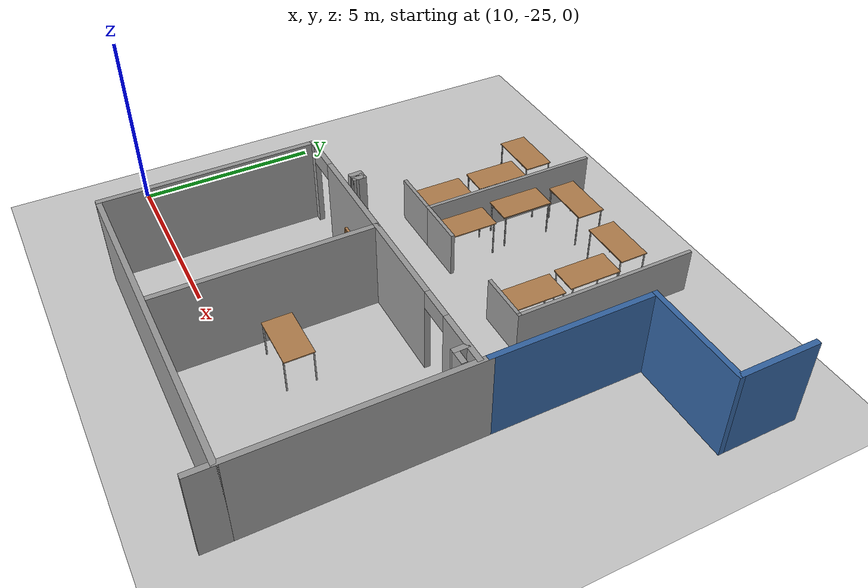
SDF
<sdf version="1.7">
 <world name="default">
  <model name="ground_plane">
   <static>1</static>
   <link name="link">
    <collision name="collision">
     <geometry><plane><normal>0 0 1</normal><size>100 100</size></plane></geometry>
     <surface>
      <contact><collide_bitmask>65535</collide_bitmask></contact>
      <friction><ode><mu>100</mu><mu2>50</mu2></ode></friction>
     </surface>
    </collision>
    <visual name="visual">
     <cast_shadows>0</cast_shadows>
     <geometry><plane><normal>0 0 1</normal><size>100 100</size></plane></geometry>
     <material>
      <script><uri>file://media/materials/scripts/gazebo.material</uri><name>Gazebo/Grey</name></script>
     </material>
    </visual>
   </link>
  </model>
  <model name="XXXXX_office_centered">
   <pose>8.46852 -9.33941 0 0 -0 0</pose>
   <link name="Wall_10">
    <collision name="Wall_10_Collision">
     <geometry><box><size>2.25 0.15 2.5</size></box></geometry>
     <pose>0 0 1.25 0 -0 0</pose>
    </collision>
    <visual name="Wall_10_Visual">
     <pose>0 0 1.25 0 -0 0</pose>
     <geometry><box><size>2.25 0.15 2.5</size></box></geometry>
     <material>
      <script><uri>file://media/materials/scripts/gazebo.material</uri><name>Gazebo/Grey</name></script>
      <ambient>0.203922 0.396078 0.643137 1</ambient>
     </material>
     <meta><layer>0</layer></meta>
    </visual>
    <pose>16.775 -5.85015 0 0 -0 -1.5708</pose>
   </link>
   <link name="Wall_11">
    <collision name="Wall_11_Collision">
     <geometry><box><size>3 0.15 2.5</size></box></geometry>
     <pose>0 0 1.25 0 -0 0</pose>
    </collision>
    <visual name="Wall_11_Visual">
     <pose>0 0 1.25 0 -0 0</pose>
     <geometry><box><size>3 0.15 2.5</size></box></geometry>
     <material>
      <script><uri>file://media/materials/scripts/gazebo.material</uri><name>Gazebo/Grey</name></script>
      <ambient>0.203922 0.396078 0.643137 1</ambient>
     </material>
     <meta><layer>0</layer></meta>
    </visual>
    <pose>15.35 -6.90015 0 0 -0 3.14159</pose>
   </link>
   <link name="Wall_12">
    <collision name="Wall_12_Collision">
     <geometry><box><size>4.5 0.15 2.5</size></box></geometry>
     <pose>0 0 1.25 0 -0 0</pose>
    </collision>
    <visual name="Wall_12_Visual">
     <pose>0 0 1.25 0 -0 0</pose>
     <geometry><box><size>4.5 0.15 2.5</size></box></geometry>
     <material>
      <script><uri>file://media/materials/scripts/gazebo.material</uri><name>Gazebo/Grey</name></script>
      <ambient>0.203922 0.396078 0.643137 1</ambient>
     </material>
     <meta><layer>0</layer></meta>
    </visual>
    <pose>13.925 -9.07515 0 0 -0 -1.5708</pose>
   </link>
   <link name="Wall_13">
    <collision name="Wall_13_Collision">
     <geometry><box><size>6.25 0.15 2.5</size></box></geometry>
     <pose>0 0 1.25 0 -0 0</pose>
    </collision>
    <visual name="Wall_13_Visual">
     <pose>0 0 1.25 0 -0 0</pose>
     <geometry><box><size>6.25 0.15 2.5</size></box></geometry>
     <material>
      <script><uri>file://media/materials/scripts/gazebo.material</uri><name>Gazebo/Grey</name></script>
      <ambient>1 1 1 1</ambient>
     </material>
     <meta><layer>0</layer></meta>
    </visual>
    <pose>13.925 -14.3001 0 0 -0 -1.5708</pose>
   </link>
   <link name="Wall_14">
    <collision name="Wall_14_Collision">
     <geometry><box><size>9.25 0.15 2.5</size></box></geometry>
     <pose>0 0 1.25 0 -0 0</pose>
    </collision>
    <visual name="Wall_14_Visual">
     <pose>0 0 1.25 0 -0 0</pose>
     <geometry><box><size>9.25 0.15 2.5</size></box></geometry>
     <material>
      <script><uri>file://media/materials/scripts/gazebo.material</uri><name>Gazebo/Grey</name></script>
      <ambient>1 1 1 1</ambient>
     </material>
     <meta><layer>0</layer></meta>
    </visual>
    <pose>9.375 -17.3501 0 0 -0 3.14159</pose>
   </link>
   <link name="Wall_147">
    <collision name="Wall_147_Collision">
     <geometry><box><size>5.2 0.1 1.3</size></box></geometry>
     <pose>0 0 0.65 0 -0 0</pose>
    </collision>
    <visual name="Wall_147_Visual">
     <pose>0 0 0.65 0 -0 0</pose>
     <geometry><box><size>5.2 0.1 1.3</size></box></geometry>
     <material>
      <script><uri>file://media/materials/scripts/gazebo.material</uri><name>Gazebo/Grey</name></script>
      <ambient>1 1 1 1</ambient>
     </material>
     <meta><layer>0</layer></meta>
    </visual>
    <pose>12.0503 -6.76685 0 0 -0 -1.5708</pose>
   </link>
   <link name="Wall_148">
    <collision name="Wall_148_Collision">
     <geometry><box><size>1.4498 0.1 1.3</size></box></geometry>
     <pose>0 0 0.65 0 -0 0</pose>
    </collision>
    <visual name="Wall_148_Visual">
     <pose>0 0 0.65 0 -0 0</pose>
     <geometry><box><size>1.4498 0.1 1.3</size></box></geometry>
     <material>
      <script><uri>file://media/materials/scripts/gazebo.material</uri><name>Gazebo/Grey</name></script>
      <ambient>1 1 1 1</ambient>
     </material>
     <meta><layer>0</layer></meta>
    </visual>
    <pose>11.3753 -9.31685 0 0 -0 3.14159</pose>
   </link>
   <link name="Wall_157">
    <collision name="Wall_157_Collision">
     <geometry><box><size>5.2 0.1 1.3</size></box></geometry>
     <pose>0 0 0.65 0 -0 0</pose>
    </collision>
    <visual name="Wall_157_Visual">
     <pose>0 0 0.65 0 -0 0</pose>
     <geometry><box><size>5.2 0.1 1.3</size></box></geometry>
     <material>
      <script><uri>file://media/materials/scripts/gazebo.material</uri><name>Gazebo/Grey</name></script>
      <ambient>1 1 1 1</ambient>
     </material>
     <meta><layer>0</layer></meta>
    </visual>
    <pose>7.31527 -6.75985 0 0 -0 -1.5708</pose>
   </link>
   <link name="Wall_158">
    <collision name="Wall_158_Collision">
     <geometry><box><size>1.44989 0.1 1.3</size></box></geometry>
     <pose>0 0 0.65 0 -0 0</pose>
    </collision>
    <visual name="Wall_158_Visual">
     <pose>0 0 0.65 0 -0 0</pose>
     <geometry><box><size>1.44989 0.1 1.3</size></box></geometry>
     <material>
      <script><uri>file://media/materials/scripts/gazebo.material</uri><name>Gazebo/Grey</name></script>
      <ambient>1 1 1 1</ambient>
     </material>
     <meta><layer>0</layer></meta>
    </visual>
    <pose>7.99027 -9.30985 0 0 -0 0</pose>
   </link>
   <link name="Wall_160">
    <collision name="Wall_160_Collision">
     <geometry><box><size>1.45011 0.1 1.3</size></box></geometry>
     <pose>0 0 0.65 0 -0 0</pose>
    </collision>
    <visual name="Wall_160_Visual">
     <pose>0 0 0.65 0 -0 0</pose>
     <geometry><box><size>1.45011 0.1 1.3</size></box></geometry>
     <material>
      <script><uri>file://media/materials/scripts/gazebo.material</uri><name>Gazebo/Grey</name></script>
      <ambient>1 1 1 1</ambient>
     </material>
     <meta><layer>0</layer></meta>
    </visual>
    <pose>6.64027 -9.30985 0 0 -0 3.14159</pose>
   </link>
   <link name="Wall_185">
    <collision name="Wall_185_Collision">
     <geometry><box><size>1.44981 0.1 1.3</size></box></geometry>
     <pose>0 0 0.65 0 -0 0</pose>
    </collision>
    <visual name="Wall_185_Visual">
     <pose>0 0 0.65 0 -0 0</pose>
     <geometry><box><size>1.44981 0.1 1.3</size></box></geometry>
     <material>
      <script><uri>file://media/materials/scripts/gazebo.material</uri><name>Gazebo/Grey</name></script>
      <ambient>1 1 1 1</ambient>
     </material>
     <meta><layer>0</layer></meta>
    </visual>
    <pose>3.99027 -11.4899 0 0 -0 3.14159</pose>
   </link>
   <link name="Wall_21">
    <collision name="Wall_21_Collision">
     <geometry><box><size>0.75 0.15 2.5</size></box></geometry>
     <pose>0 0 1.25 0 -0 0</pose>
    </collision>
    <visual name="Wall_21_Visual">
     <pose>0 0 1.25 0 -0 0</pose>
     <geometry><box><size>0.75 0.15 2.5</size></box></geometry>
     <material>
      <script><uri>file://media/materials/scripts/gazebo.material</uri><name>Gazebo/Grey</name></script>
      <ambient>1 1 1 1</ambient>
     </material>
     <meta><layer>0</layer></meta>
    </visual>
    <pose>13.925 -17.6501 0 0 -0 -1.5708</pose>
   </link>
   <link name="Wall_59">
    <collision name="Wall_59_Collision">
     <geometry><box><size>6 0.15 2.5</size></box></geometry>
     <pose>0 0 1.25 0 -0 0</pose>
    </collision>
    <visual name="Wall_59_Visual">
     <pose>0 0 1.25 0 -0 0</pose>
     <geometry><box><size>6 0.15 2.5</size></box></geometry>
     <material>
      <script><uri>file://media/materials/scripts/gazebo.material</uri><name>Gazebo/Grey</name></script>
      <ambient>1 1 1 1</ambient>
     </material>
     <meta><layer>0</layer></meta>
    </visual>
    <pose>4.66537 -14.4148 0 0 -0 1.57083</pose>
   </link>
   <link name="Wall_60">
    <pose>6.71537 -11.4898 0 0 -0 3.5e-05</pose>
    <visual name="Wall_60_Visual_0">
     <pose>-1.95788 0 1.25 0 -0 0</pose>
     <geometry><box><size>0.33424 0.15 2.5</size></box></geometry>
     <material>
      <script><uri>file://media/materials/scripts/gazebo.material</uri><name>Gazebo/Grey</name></script>
      <ambient>1 1 1 1</ambient>
     </material>
     <meta><layer>0</layer></meta>
    </visual>
    <collision name="Wall_60_Collision_0">
     <geometry><box><size>0.33424 0.15 2.5</size></box></geometry>
     <pose>-1.95788 0 1.25 0 -0 0</pose>
    </collision>
    <visual name="Wall_60_Visual_1">
     <pose>0.61712 0 1.25 0 -0 0</pose>
     <geometry><box><size>3.01576 0.15 2.5</size></box></geometry>
     <material>
      <script><uri>file://media/materials/scripts/gazebo.material</uri><name>Gazebo/Grey</name></script>
      <ambient>1 1 1 1</ambient>
     </material>
     <meta><layer>0</layer></meta>
    </visual>
    <collision name="Wall_60_Collision_1">
     <geometry><box><size>3.01576 0.15 2.5</size></box></geometry>
     <pose>0.61712 0 1.25 0 -0 0</pose>
    </collision>
    <visual name="Wall_60_Visual_2">
     <pose>-1.34076 0 2.25 0 -0 0</pose>
     <geometry><box><size>0.9 0.15 0.5</size></box></geometry>
     <material>
      <script><uri>file://media/materials/scripts/gazebo.material</uri><name>Gazebo/Grey</name></script>
      <ambient>1 1 1 1</ambient>
     </material>
     <meta><layer>0</layer></meta>
    </visual>
    <collision name="Wall_60_Collision_2">
     <geometry><box><size>0.9 0.15 0.5</size></box></geometry>
     <pose>-1.34076 0 2.25 0 -0 0</pose>
    </collision>
   </link>
   <link name="Wall_61">
    <pose>11.3155 -11.4897 0 0 -0 0</pose>
    <visual name="Wall_61_Visual_0">
     <pose>-1.2353 0 1.25 0 -0 0</pose>
     <geometry><box><size>2.77939 0.15 2.5</size></box></geometry>
     <material>
      <script><uri>file://media/materials/scripts/gazebo.material</uri><name>Gazebo/Grey</name></script>
      <ambient>1 1 1 1</ambient>
     </material>
     <meta><layer>0</layer></meta>
    </visual>
    <collision name="Wall_61_Collision_0">
     <geometry><box><size>2.77939 0.15 2.5</size></box></geometry>
     <pose>-1.2353 0 1.25 0 -0 0</pose>
    </collision>
    <visual name="Wall_61_Visual_1">
     <pose>1.8397 0 1.25 0 -0 0</pose>
     <geometry><box><size>1.57061 0.15 2.5</size></box></geometry>
     <material>
      <script><uri>file://media/materials/scripts/gazebo.material</uri><name>Gazebo/Grey</name></script>
      <ambient>1 1 1 1</ambient>
     </material>
     <meta><layer>0</layer></meta>
    </visual>
    <collision name="Wall_61_Collision_1">
     <geometry><box><size>1.57061 0.15 2.5</size></box></geometry>
     <pose>1.8397 0 1.25 0 -0 0</pose>
    </collision>
    <visual name="Wall_61_Visual_2">
     <pose>0.604391 0 2.25 0 -0 0</pose>
     <geometry><box><size>0.9 0.15 0.5</size></box></geometry>
     <material>
      <script><uri>file://media/materials/scripts/gazebo.material</uri><name>Gazebo/Grey</name></script>
      <ambient>1 1 1 1</ambient>
     </material>
     <meta><layer>0</layer></meta>
    </visual>
    <collision name="Wall_61_Collision_2">
     <geometry><box><size>0.9 0.15 0.5</size></box></geometry>
     <pose>0.604391 0 2.25 0 -0 0</pose>
    </collision>
   </link>
   <link name="Wall_63">
    <collision name="Wall_63_Collision">
     <geometry><box><size>6 0.15 2.5</size></box></geometry>
     <pose>0 0 1.25 0 -0 0</pose>
    </collision>
    <visual name="Wall_63_Visual">
     <pose>0 0 1.25 0 -0 0</pose>
     <geometry><box><size>6 0.15 2.5</size></box></geometry>
     <material>
      <script><uri>file://media/materials/scripts/gazebo.material</uri><name>Gazebo/Grey</name></script>
      <ambient>1 1 1 1</ambient>
     </material>
     <meta><layer>0</layer></meta>
    </visual>
    <pose>8.76546 -14.4147 0 0 -0 -1.5708</pose>
   </link>
   <link name="Wall_69">
    <collision name="Wall_69_Collision">
     <geometry><box><size>0.5 0.15 2.5</size></box></geometry>
     <pose>0 0 1.25 0 -0 0</pose>
    </collision>
    <visual name="Wall_69_Visual">
     <pose>0 0 1.25 0 -0 0</pose>
     <geometry><box><size>0.5 0.15 2.5</size></box></geometry>
     <material>
      <script><uri>file://media/materials/scripts/gazebo.material</uri><name>Gazebo/Grey</name></script>
      <ambient>1 1 1 1</ambient>
     </material>
     <meta><layer>0</layer></meta>
    </visual>
    <pose>13.5793 -11.8238 0 0 -0 0</pose>
   </link>
   <link name="Wall_71">
    <collision name="Wall_71_Collision">
     <geometry><box><size>0.420382 0.15 2.5</size></box></geometry>
     <pose>0 0 1.25 0 -0 0</pose>
    </collision>
    <visual name="Wall_71_Visual">
     <pose>0 0 1.25 0 -0 0</pose>
     <geometry><box><size>0.420382 0.15 2.5</size></box></geometry>
     <material>
      <script><uri>file://media/materials/scripts/gazebo.material</uri><name>Gazebo/Grey</name></script>
      <ambient>1 1 1 1</ambient>
     </material>
     <meta><layer>0</layer></meta>
    </visual>
    <pose>13.4012 -11.6886 0 0 -0 1.5939</pose>
   </link>
   <link name="Wall_87">
    <collision name="Wall_87_Collision">
     <geometry><box><size>0.381532 0.15 2.5</size></box></geometry>
     <pose>0 0 1.25 0 -0 0</pose>
    </collision>
    <visual name="Wall_87_Visual">
     <pose>0 0 1.25 0 -0 0</pose>
     <geometry><box><size>0.381532 0.15 2.5</size></box></geometry>
     <material>
      <script><uri>file://media/materials/scripts/gazebo.material</uri><name>Gazebo/Grey</name></script>
      <ambient>1 1 1 1</ambient>
     </material>
     <meta><layer>0</layer></meta>
    </visual>
    <pose>6.55525 -11.0619 0 0 -0 1.59936</pose>
   </link>
   <link name="Wall_88">
    <collision name="Wall_88_Collision">
     <geometry><box><size>0.348375 0.15 2.5</size></box></geometry>
     <pose>0 0 1.25 0 -0 0</pose>
    </collision>
    <visual name="Wall_88_Visual">
     <pose>0 0 1.25 0 -0 0</pose>
     <geometry><box><size>0.348375 0.15 2.5</size></box></geometry>
     <material>
      <script><uri>file://media/materials/scripts/gazebo.material</uri><name>Gazebo/Grey</name></script>
      <ambient>1 1 1 1</ambient>
     </material>
     <meta><layer>0</layer></meta>
    </visual>
    <pose>6.65113 -10.9462 0 0 -0 0</pose>
   </link>
   <link name="Wall_89">
    <collision name="Wall_89_Collision">
     <geometry><box><size>0.368613 0.15 2.5</size></box></geometry>
     <pose>0 0 1.25 0 -0 0</pose>
    </collision>
    <visual name="Wall_89_Visual">
     <pose>0 0 1.25 0 -0 0</pose>
     <geometry><box><size>0.368613 0.15 2.5</size></box></geometry>
     <material>
      <script><uri>file://media/materials/scripts/gazebo.material</uri><name>Gazebo/Grey</name></script>
      <ambient>1 1 1 1</ambient>
     </material>
     <meta><layer>0</layer></meta>
    </visual>
    <pose>6.75032 -11.0553 0 0 -0 -1.5708</pose>
   </link>
   <link name="Wall_90">
    <collision name="Wall_90_Collision">
     <geometry><box><size>0.331874 0.15 2.5</size></box></geometry>
     <pose>0 0 1.25 0 -0 0</pose>
    </collision>
    <visual name="Wall_90_Visual">
     <pose>0 0 1.25 0 -0 0</pose>
     <geometry><box><size>0.331874 0.15 2.5</size></box></geometry>
     <material>
      <script><uri>file://media/materials/scripts/gazebo.material</uri><name>Gazebo/Grey</name></script>
      <ambient>1 1 1 1</ambient>
     </material>
     <meta><layer>0</layer></meta>
    </visual>
    <pose>6.6594 -11.1611 0 0 -0 3.10525</pose>
   </link>
   <static>1</static>
  </model>
  <model name="table_0">
   <static>1</static>
   <link name="link">
    <collision name="surface">
     <pose>0 0 1 0 -0 0</pose>
     <geometry><box><size>1.5 0.8 0.03</size></box></geometry>
     <surface><friction><ode><mu>0.6</mu><mu2>0.6</mu2></ode></friction></surface>
    </collision>
    <visual name="visual1">
     <pose>0 0 1 0 -0 0</pose>
     <geometry><box><size>1.5 0.8 0.03</size></box></geometry>
     <material>
      <script><uri>file://media/materials/scripts/gazebo.material</uri><name>Gazebo/Wood</name></script>
     </material>
    </visual>
    <collision name="collision_front_left_leg">
     <pose>0.68 0.38 0.5 0 -0 0</pose>
     <geometry><cylinder><radius>0.02</radius><length>1</length></cylinder></geometry>
    </collision>
    <visual name="visual_front_left_leg">
     <pose>0.68 0.38 0.5 0 -0 0</pose>
     <geometry><cylinder><radius>0.02</radius><length>1</length></cylinder></geometry>
     <material>
      <script><uri>file://media/materials/scripts/gazebo.material</uri><name>Gazebo/Grey</name></script>
     </material>
    </visual>
    <collision name="collision_front_right_leg">
     <pose>0.68 -0.38 0.5 0 -0 0</pose>
     <geometry><cylinder><radius>0.02</radius><length>1</length></cylinder></geometry>
    </collision>
    <visual name="visual_front_right_leg">
     <pose>0.68 -0.38 0.5 0 -0 0</pose>
     <geometry><cylinder><radius>0.02</radius><length>1</length></cylinder></geometry>
     <material>
      <script><uri>file://media/materials/scripts/gazebo.material</uri><name>Gazebo/Grey</name></script>
     </material>
    </visual>
    <collision name="collision_back_right_leg">
     <pose>-0.68 -0.38 0.5 0 -0 0</pose>
     <geometry><cylinder><radius>0.02</radius><length>1</length></cylinder></geometry>
    </collision>
    <visual name="visual_back_right_leg">
     <pose>-0.68 -0.38 0.5 0 -0 0</pose>
     <geometry><cylinder><radius>0.02</radius><length>1</length></cylinder></geometry>
     <material>
      <script><uri>file://media/materials/scripts/gazebo.material</uri><name>Gazebo/Grey</name></script>
     </material>
    </visual>
    <collision name="collision_back_left_leg">
     <pose>-0.68 0.38 0.5 0 -0 0</pose>
     <geometry><cylinder><radius>0.02</radius><length>1</length></cylinder></geometry>
    </collision>
    <visual name="visual_back_left_leg">
     <pose>-0.68 0.38 0.5 0 -0 0</pose>
     <geometry><cylinder><radius>0.02</radius><length>1</length></cylinder></geometry>
     <material>
      <script><uri>file://media/materials/scripts/gazebo.material</uri><name>Gazebo/Grey</name></script>
     </material>
    </visual>
   </link>
   <pose>16.2224 -23.8076 0 0 -0 0</pose>
  </model>
  <model name="table_1">
   <static>1</static>
   <link name="link">
    <collision name="surface">
     <pose>0 0 1 0 -0 0</pose>
     <geometry><box><size>1.5 0.8 0.03</size></box></geometry>
     <surface><friction><ode><mu>0.6</mu><mu2>0.6</mu2></ode></friction></surface>
    </collision>
    <visual name="visual1">
     <pose>0 0 1 0 -0 0</pose>
     <geometry><box><size>1.5 0.8 0.03</size></box></geometry>
     <material>
      <script><uri>file://media/materials/scripts/gazebo.material</uri><name>Gazebo/Wood</name></script>
     </material>
    </visual>
    <collision name="collision_front_left_leg">
     <pose>0.68 0.38 0.5 0 -0 0</pose>
     <geometry><cylinder><radius>0.02</radius><length>1</length></cylinder></geometry>
    </collision>
    <visual name="visual_front_left_leg">
     <pose>0.68 0.38 0.5 0 -0 0</pose>
     <geometry><cylinder><radius>0.02</radius><length>1</length></cylinder></geometry>
     <material>
      <script><uri>file://media/materials/scripts/gazebo.material</uri><name>Gazebo/Grey</name></script>
     </material>
    </visual>
    <collision name="collision_front_right_leg">
     <pose>0.68 -0.38 0.5 0 -0 0</pose>
     <geometry><cylinder><radius>0.02</radius><length>1</length></cylinder></geometry>
    </collision>
    <visual name="visual_front_right_leg">
     <pose>0.68 -0.38 0.5 0 -0 0</pose>
     <geometry><cylinder><radius>0.02</radius><length>1</length></cylinder></geometry>
     <material>
      <script><uri>file://media/materials/scripts/gazebo.material</uri><name>Gazebo/Grey</name></script>
     </material>
    </visual>
    <collision name="collision_back_right_leg">
     <pose>-0.68 -0.38 0.5 0 -0 0</pose>
     <geometry><cylinder><radius>0.02</radius><length>1</length></cylinder></geometry>
    </collision>
    <visual name="visual_back_right_leg">
     <pose>-0.68 -0.38 0.5 0 -0 0</pose>
     <geometry><cylinder><radius>0.02</radius><length>1</length></cylinder></geometry>
     <material>
      <script><uri>file://media/materials/scripts/gazebo.material</uri><name>Gazebo/Grey</name></script>
     </material>
    </visual>
    <collision name="collision_back_left_leg">
     <pose>-0.68 0.38 0.5 0 -0 0</pose>
     <geometry><cylinder><radius>0.02</radius><length>1</length></cylinder></geometry>
    </collision>
    <visual name="visual_back_left_leg">
     <pose>-0.68 0.38 0.5 0 -0 0</pose>
     <geometry><cylinder><radius>0.02</radius><length>1</length></cylinder></geometry>
     <material>
      <script><uri>file://media/materials/scripts/gazebo.material</uri><name>Gazebo/Grey</name></script>
     </material>
    </visual>
   </link>
   <pose>18.4098 -23.7596 0 0 -0 0</pose>
  </model>
  <model name="table_9">
   <static>1</static>
   <link name="link">
    <collision name="surface">
     <pose>0 0 1 0 -0 0</pose>
     <geometry><box><size>1.5 0.8 0.03</size></box></geometry>
     <surface><friction><ode><mu>0.6</mu><mu2>0.6</mu2></ode></friction></surface>
    </collision>
    <visual name="visual1">
     <pose>0 0 1 0 -0 0</pose>
     <geometry><box><size>1.5 0.8 0.03</size></box></geometry>
     <material>
      <script><uri>file://media/materials/scripts/gazebo.material</uri><name>Gazebo/Wood</name></script>
     </material>
    </visual>
    <collision name="collision_front_left_leg">
     <pose>0.68 0.38 0.5 0 -0 0</pose>
     <geometry><cylinder><radius>0.02</radius><length>1</length></cylinder></geometry>
    </collision>
    <visual name="visual_front_left_leg">
     <pose>0.68 0.38 0.5 0 -0 0</pose>
     <geometry><cylinder><radius>0.02</radius><length>1</length></cylinder></geometry>
     <material>
      <script><uri>file://media/materials/scripts/gazebo.material</uri><name>Gazebo/Grey</name></script>
     </material>
    </visual>
    <collision name="collision_front_right_leg">
     <pose>0.68 -0.38 0.5 0 -0 0</pose>
     <geometry><cylinder><radius>0.02</radius><length>1</length></cylinder></geometry>
    </collision>
    <visual name="visual_front_right_leg">
     <pose>0.68 -0.38 0.5 0 -0 0</pose>
     <geometry><cylinder><radius>0.02</radius><length>1</length></cylinder></geometry>
     <material>
      <script><uri>file://media/materials/scripts/gazebo.material</uri><name>Gazebo/Grey</name></script>
     </material>
    </visual>
    <collision name="collision_back_right_leg">
     <pose>-0.68 -0.38 0.5 0 -0 0</pose>
     <geometry><cylinder><radius>0.02</radius><length>1</length></cylinder></geometry>
    </collision>
    <visual name="visual_back_right_leg">
     <pose>-0.68 -0.38 0.5 0 -0 0</pose>
     <geometry><cylinder><radius>0.02</radius><length>1</length></cylinder></geometry>
     <material>
      <script><uri>file://media/materials/scripts/gazebo.material</uri><name>Gazebo/Grey</name></script>
     </material>
    </visual>
    <collision name="collision_back_left_leg">
     <pose>-0.68 0.38 0.5 0 -0 0</pose>
     <geometry><cylinder><radius>0.02</radius><length>1</length></cylinder></geometry>
    </collision>
    <visual name="visual_back_left_leg">
     <pose>-0.68 0.38 0.5 0 -0 0</pose>
     <geometry><cylinder><radius>0.02</radius><length>1</length></cylinder></geometry>
     <material>
      <script><uri>file://media/materials/scripts/gazebo.material</uri><name>Gazebo/Grey</name></script>
     </material>
    </visual>
   </link>
   <pose>14.4395 -14.7208 0 0 -0 0</pose>
  </model>
  <model name="table_10">
   <static>1</static>
   <link name="link">
    <collision name="surface">
     <pose>0 0 1 0 -0 0</pose>
     <geometry><box><size>1.5 0.8 0.03</size></box></geometry>
     <surface><friction><ode><mu>0.6</mu><mu2>0.6</mu2></ode></friction></surface>
    </collision>
    <visual name="visual1">
     <pose>0 0 1 0 -0 0</pose>
     <geometry><box><size>1.5 0.8 0.03</size></box></geometry>
     <material>
      <script><uri>file://media/materials/scripts/gazebo.material</uri><name>Gazebo/Wood</name></script>
     </material>
    </visual>
    <collision name="collision_front_left_leg">
     <pose>0.68 0.38 0.5 0 -0 0</pose>
     <geometry><cylinder><radius>0.02</radius><length>1</length></cylinder></geometry>
    </collision>
    <visual name="visual_front_left_leg">
     <pose>0.68 0.38 0.5 0 -0 0</pose>
     <geometry><cylinder><radius>0.02</radius><length>1</length></cylinder></geometry>
     <material>
      <script><uri>file://media/materials/scripts/gazebo.material</uri><name>Gazebo/Grey</name></script>
     </material>
    </visual>
    <collision name="collision_front_right_leg">
     <pose>0.68 -0.38 0.5 0 -0 0</pose>
     <geometry><cylinder><radius>0.02</radius><length>1</length></cylinder></geometry>
    </collision>
    <visual name="visual_front_right_leg">
     <pose>0.68 -0.38 0.5 0 -0 0</pose>
     <geometry><cylinder><radius>0.02</radius><length>1</length></cylinder></geometry>
     <material>
      <script><uri>file://media/materials/scripts/gazebo.material</uri><name>Gazebo/Grey</name></script>
     </material>
    </visual>
    <collision name="collision_back_right_leg">
     <pose>-0.68 -0.38 0.5 0 -0 0</pose>
     <geometry><cylinder><radius>0.02</radius><length>1</length></cylinder></geometry>
    </collision>
    <visual name="visual_back_right_leg">
     <pose>-0.68 -0.38 0.5 0 -0 0</pose>
     <geometry><cylinder><radius>0.02</radius><length>1</length></cylinder></geometry>
     <material>
      <script><uri>file://media/materials/scripts/gazebo.material</uri><name>Gazebo/Grey</name></script>
     </material>
    </visual>
    <collision name="collision_back_left_leg">
     <pose>-0.68 0.38 0.5 0 -0 0</pose>
     <geometry><cylinder><radius>0.02</radius><length>1</length></cylinder></geometry>
    </collision>
    <visual name="visual_back_left_leg">
     <pose>-0.68 0.38 0.5 0 -0 0</pose>
     <geometry><cylinder><radius>0.02</radius><length>1</length></cylinder></geometry>
     <material>
      <script><uri>file://media/materials/scripts/gazebo.material</uri><name>Gazebo/Grey</name></script>
     </material>
    </visual>
   </link>
   <pose>17.0157 -14.6568 0 0 -0 0</pose>
  </model>
  <model name="table_11">
   <static>1</static>
   <link name="link">
    <collision name="surface">
     <pose>0 0 1 0 -0 0</pose>
     <geometry><box><size>1.5 0.8 0.03</size></box></geometry>
     <surface><friction><ode><mu>0.6</mu><mu2>0.6</mu2></ode></friction></surface>
    </collision>
    <visual name="visual1">
     <pose>0 0 1 0 -0 0</pose>
     <geometry><box><size>1.5 0.8 0.03</size></box></geometry>
     <material>
      <script><uri>file://media/materials/scripts/gazebo.material</uri><name>Gazebo/Wood</name></script>
     </material>
    </visual>
    <collision name="collision_front_left_leg">
     <pose>0.68 0.38 0.5 0 -0 0</pose>
     <geometry><cylinder><radius>0.02</radius><length>1</length></cylinder></geometry>
    </collision>
    <visual name="visual_front_left_leg">
     <pose>0.68 0.38 0.5 0 -0 0</pose>
     <geometry><cylinder><radius>0.02</radius><length>1</length></cylinder></geometry>
     <material>
      <script><uri>file://media/materials/scripts/gazebo.material</uri><name>Gazebo/Grey</name></script>
     </material>
    </visual>
    <collision name="collision_front_right_leg">
     <pose>0.68 -0.38 0.5 0 -0 0</pose>
     <geometry><cylinder><radius>0.02</radius><length>1</length></cylinder></geometry>
    </collision>
    <visual name="visual_front_right_leg">
     <pose>0.68 -0.38 0.5 0 -0 0</pose>
     <geometry><cylinder><radius>0.02</radius><length>1</length></cylinder></geometry>
     <material>
      <script><uri>file://media/materials/scripts/gazebo.material</uri><name>Gazebo/Grey</name></script>
     </material>
    </visual>
    <collision name="collision_back_right_leg">
     <pose>-0.68 -0.38 0.5 0 -0 0</pose>
     <geometry><cylinder><radius>0.02</radius><length>1</length></cylinder></geometry>
    </collision>
    <visual name="visual_back_right_leg">
     <pose>-0.68 -0.38 0.5 0 -0 0</pose>
     <geometry><cylinder><radius>0.02</radius><length>1</length></cylinder></geometry>
     <material>
      <script><uri>file://media/materials/scripts/gazebo.material</uri><name>Gazebo/Grey</name></script>
     </material>
    </visual>
    <collision name="collision_back_left_leg">
     <pose>-0.68 0.38 0.5 0 -0 0</pose>
     <geometry><cylinder><radius>0.02</radius><length>1</length></cylinder></geometry>
    </collision>
    <visual name="visual_back_left_leg">
     <pose>-0.68 0.38 0.5 0 -0 0</pose>
     <geometry><cylinder><radius>0.02</radius><length>1</length></cylinder></geometry>
     <material>
      <script><uri>file://media/materials/scripts/gazebo.material</uri><name>Gazebo/Grey</name></script>
     </material>
    </visual>
   </link>
   <pose>19.0717 -14.7207 0 0 -0 0</pose>
  </model>
  <model name="table_26_clone_6">
   <static>1</static>
   <link name="link">
    <collision name="surface">
     <pose>0 0 1 0 -0 0</pose>
     <geometry><box><size>1.5 0.8 0.03</size></box></geometry>
     <surface><friction><ode><mu>0.6</mu><mu2>0.6</mu2></ode></friction></surface>
    </collision>
    <visual name="visual1">
     <pose>0 0 1 0 -0 0</pose>
     <geometry><box><size>1.5 0.8 0.03</size></box></geometry>
     <material>
      <script><uri>file://media/materials/scripts/gazebo.material</uri><name>Gazebo/Wood</name></script>
     </material>
    </visual>
    <collision name="collision_front_left_leg">
     <pose>0.68 0.38 0.5 0 -0 0</pose>
     <geometry><cylinder><radius>0.02</radius><length>1</length></cylinder></geometry>
    </collision>
    <visual name="visual_front_left_leg">
     <pose>0.68 0.38 0.5 0 -0 0</pose>
     <geometry><cylinder><radius>0.02</radius><length>1</length></cylinder></geometry>
     <material>
      <script><uri>file://media/materials/scripts/gazebo.material</uri><name>Gazebo/Grey</name></script>
     </material>
    </visual>
    <collision name="collision_front_right_leg">
     <pose>0.68 -0.38 0.5 0 -0 0</pose>
     <geometry><cylinder><radius>0.02</radius><length>1</length></cylinder></geometry>
    </collision>
    <visual name="visual_front_right_leg">
     <pose>0.68 -0.38 0.5 0 -0 0</pose>
     <geometry><cylinder><radius>0.02</radius><length>1</length></cylinder></geometry>
     <material>
      <script><uri>file://media/materials/scripts/gazebo.material</uri><name>Gazebo/Grey</name></script>
     </material>
    </visual>
    <collision name="collision_back_right_leg">
     <pose>-0.68 -0.38 0.5 0 -0 0</pose>
     <geometry><cylinder><radius>0.02</radius><length>1</length></cylinder></geometry>
    </collision>
    <visual name="visual_back_right_leg">
     <pose>-0.68 -0.38 0.5 0 -0 0</pose>
     <geometry><cylinder><radius>0.02</radius><length>1</length></cylinder></geometry>
     <material>
      <script><uri>file://media/materials/scripts/gazebo.material</uri><name>Gazebo/Grey</name></script>
     </material>
    </visual>
    <collision name="collision_back_left_leg">
     <pose>-0.68 0.38 0.5 0 -0 0</pose>
     <geometry><cylinder><radius>0.02</radius><length>1</length></cylinder></geometry>
    </collision>
    <visual name="visual_back_left_leg">
     <pose>-0.68 0.38 0.5 0 -0 0</pose>
     <geometry><cylinder><radius>0.02</radius><length>1</length></cylinder></geometry>
     <material>
      <script><uri>file://media/materials/scripts/gazebo.material</uri><name>Gazebo/Grey</name></script>
     </material>
    </visual>
   </link>
   <pose>19.6908 -16.0998 0 0 0 -1.57974</pose>
  </model>
  <model name="table_26_clone_7">
   <static>1</static>
   <link name="link">
    <collision name="surface">
     <pose>0 0 1 0 -0 0</pose>
     <geometry><box><size>1.5 0.8 0.03</size></box></geometry>
     <surface><friction><ode><mu>0.6</mu><mu2>0.6</mu2></ode></friction></surface>
    </collision>
    <visual name="visual1">
     <pose>0 0 1 0 -0 0</pose>
     <geometry><box><size>1.5 0.8 0.03</size></box></geometry>
     <material>
      <script><uri>file://media/materials/scripts/gazebo.material</uri><name>Gazebo/Wood</name></script>
     </material>
    </visual>
    <collision name="collision_front_left_leg">
     <pose>0.68 0.38 0.5 0 -0 0</pose>
     <geometry><cylinder><radius>0.02</radius><length>1</length></cylinder></geometry>
    </collision>
    <visual name="visual_front_left_leg">
     <pose>0.68 0.38 0.5 0 -0 0</pose>
     <geometry><cylinder><radius>0.02</radius><length>1</length></cylinder></geometry>
     <material>
      <script><uri>file://media/materials/scripts/gazebo.material</uri><name>Gazebo/Grey</name></script>
     </material>
    </visual>
    <collision name="collision_front_right_leg">
     <pose>0.68 -0.38 0.5 0 -0 0</pose>
     <geometry><cylinder><radius>0.02</radius><length>1</length></cylinder></geometry>
    </collision>
    <visual name="visual_front_right_leg">
     <pose>0.68 -0.38 0.5 0 -0 0</pose>
     <geometry><cylinder><radius>0.02</radius><length>1</length></cylinder></geometry>
     <material>
      <script><uri>file://media/materials/scripts/gazebo.material</uri><name>Gazebo/Grey</name></script>
     </material>
    </visual>
    <collision name="collision_back_right_leg">
     <pose>-0.68 -0.38 0.5 0 -0 0</pose>
     <geometry><cylinder><radius>0.02</radius><length>1</length></cylinder></geometry>
    </collision>
    <visual name="visual_back_right_leg">
     <pose>-0.68 -0.38 0.5 0 -0 0</pose>
     <geometry><cylinder><radius>0.02</radius><length>1</length></cylinder></geometry>
     <material>
      <script><uri>file://media/materials/scripts/gazebo.material</uri><name>Gazebo/Grey</name></script>
     </material>
    </visual>
    <collision name="collision_back_left_leg">
     <pose>-0.68 0.38 0.5 0 -0 0</pose>
     <geometry><cylinder><radius>0.02</radius><length>1</length></cylinder></geometry>
    </collision>
    <visual name="visual_back_left_leg">
     <pose>-0.68 0.38 0.5 0 -0 0</pose>
     <geometry><cylinder><radius>0.02</radius><length>1</length></cylinder></geometry>
     <material>
      <script><uri>file://media/materials/scripts/gazebo.material</uri><name>Gazebo/Grey</name></script>
     </material>
    </visual>
   </link>
   <pose>19.7317 -17.7824 0 0 0 -1.57974</pose>
  </model>
  <model name="table_26_clone_8">
   <static>1</static>
   <link name="link">
    <collision name="surface">
     <pose>0 0 1 0 -0 0</pose>
     <geometry><box><size>1.5 0.8 0.03</size></box></geometry>
     <surface><friction><ode><mu>0.6</mu><mu2>0.6</mu2></ode></friction></surface>
    </collision>
    <visual name="visual1">
     <pose>0 0 1 0 -0 0</pose>
     <geometry><box><size>1.5 0.8 0.03</size></box></geometry>
     <material>
      <script><uri>file://media/materials/scripts/gazebo.material</uri><name>Gazebo/Wood</name></script>
     </material>
    </visual>
    <collision name="collision_front_left_leg">
     <pose>0.68 0.38 0.5 0 -0 0</pose>
     <geometry><cylinder><radius>0.02</radius><length>1</length></cylinder></geometry>
    </collision>
    <visual name="visual_front_left_leg">
     <pose>0.68 0.38 0.5 0 -0 0</pose>
     <geometry><cylinder><radius>0.02</radius><length>1</length></cylinder></geometry>
     <material>
      <script><uri>file://media/materials/scripts/gazebo.material</uri><name>Gazebo/Grey</name></script>
     </material>
    </visual>
    <collision name="collision_front_right_leg">
     <pose>0.68 -0.38 0.5 0 -0 0</pose>
     <geometry><cylinder><radius>0.02</radius><length>1</length></cylinder></geometry>
    </collision>
    <visual name="visual_front_right_leg">
     <pose>0.68 -0.38 0.5 0 -0 0</pose>
     <geometry><cylinder><radius>0.02</radius><length>1</length></cylinder></geometry>
     <material>
      <script><uri>file://media/materials/scripts/gazebo.material</uri><name>Gazebo/Grey</name></script>
     </material>
    </visual>
    <collision name="collision_back_right_leg">
     <pose>-0.68 -0.38 0.5 0 -0 0</pose>
     <geometry><cylinder><radius>0.02</radius><length>1</length></cylinder></geometry>
    </collision>
    <visual name="visual_back_right_leg">
     <pose>-0.68 -0.38 0.5 0 -0 0</pose>
     <geometry><cylinder><radius>0.02</radius><length>1</length></cylinder></geometry>
     <material>
      <script><uri>file://media/materials/scripts/gazebo.material</uri><name>Gazebo/Grey</name></script>
     </material>
    </visual>
    <collision name="collision_back_left_leg">
     <pose>-0.68 0.38 0.5 0 -0 0</pose>
     <geometry><cylinder><radius>0.02</radius><length>1</length></cylinder></geometry>
    </collision>
    <visual name="visual_back_left_leg">
     <pose>-0.68 0.38 0.5 0 -0 0</pose>
     <geometry><cylinder><radius>0.02</radius><length>1</length></cylinder></geometry>
     <material>
      <script><uri>file://media/materials/scripts/gazebo.material</uri><name>Gazebo/Grey</name></script>
     </material>
    </visual>
   </link>
   <pose>16.5327 -17.9141 0 0 0 -1.57974</pose>
  </model>
  <model name="table_26_clone_9">
   <static>1</static>
   <link name="link">
    <collision name="surface">
     <pose>0 0 1 0 -0 0</pose>
     <geometry><box><size>1.5 0.8 0.03</size></box></geometry>
     <surface><friction><ode><mu>0.6</mu><mu2>0.6</mu2></ode></friction></surface>
    </collision>
    <visual name="visual1">
     <pose>0 0 1 0 -0 0</pose>
     <geometry><box><size>1.5 0.8 0.03</size></box></geometry>
     <material>
      <script><uri>file://media/materials/scripts/gazebo.material</uri><name>Gazebo/Wood</name></script>
     </material>
    </visual>
    <collision name="collision_front_left_leg">
     <pose>0.68 0.38 0.5 0 -0 0</pose>
     <geometry><cylinder><radius>0.02</radius><length>1</length></cylinder></geometry>
    </collision>
    <visual name="visual_front_left_leg">
     <pose>0.68 0.38 0.5 0 -0 0</pose>
     <geometry><cylinder><radius>0.02</radius><length>1</length></cylinder></geometry>
     <material>
      <script><uri>file://media/materials/scripts/gazebo.material</uri><name>Gazebo/Grey</name></script>
     </material>
    </visual>
    <collision name="collision_front_right_leg">
     <pose>0.68 -0.38 0.5 0 -0 0</pose>
     <geometry><cylinder><radius>0.02</radius><length>1</length></cylinder></geometry>
    </collision>
    <visual name="visual_front_right_leg">
     <pose>0.68 -0.38 0.5 0 -0 0</pose>
     <geometry><cylinder><radius>0.02</radius><length>1</length></cylinder></geometry>
     <material>
      <script><uri>file://media/materials/scripts/gazebo.material</uri><name>Gazebo/Grey</name></script>
     </material>
    </visual>
    <collision name="collision_back_right_leg">
     <pose>-0.68 -0.38 0.5 0 -0 0</pose>
     <geometry><cylinder><radius>0.02</radius><length>1</length></cylinder></geometry>
    </collision>
    <visual name="visual_back_right_leg">
     <pose>-0.68 -0.38 0.5 0 -0 0</pose>
     <geometry><cylinder><radius>0.02</radius><length>1</length></cylinder></geometry>
     <material>
      <script><uri>file://media/materials/scripts/gazebo.material</uri><name>Gazebo/Grey</name></script>
     </material>
    </visual>
    <collision name="collision_back_left_leg">
     <pose>-0.68 0.38 0.5 0 -0 0</pose>
     <geometry><cylinder><radius>0.02</radius><length>1</length></cylinder></geometry>
    </collision>
    <visual name="visual_back_left_leg">
     <pose>-0.68 0.38 0.5 0 -0 0</pose>
     <geometry><cylinder><radius>0.02</radius><length>1</length></cylinder></geometry>
     <material>
      <script><uri>file://media/materials/scripts/gazebo.material</uri><name>Gazebo/Grey</name></script>
     </material>
    </visual>
   </link>
   <pose>16.4412 -16.1164 0 0 0 -1.57974</pose>
  </model>
  <model name="table_26_clone_10">
   <static>1</static>
   <link name="link">
    <collision name="surface">
     <pose>0 0 1 0 -0 0</pose>
     <geometry><box><size>1.5 0.8 0.03</size></box></geometry>
     <surface><friction><ode><mu>0.6</mu><mu2>0.6</mu2></ode></friction></surface>
    </collision>
    <visual name="visual1">
     <pose>0 0 1 0 -0 0</pose>
     <geometry><box><size>1.5 0.8 0.03</size></box></geometry>
     <material>
      <script><uri>file://media/materials/scripts/gazebo.material</uri><name>Gazebo/Wood</name></script>
     </material>
    </visual>
    <collision name="collision_front_left_leg">
     <pose>0.68 0.38 0.5 0 -0 0</pose>
     <geometry><cylinder><radius>0.02</radius><length>1</length></cylinder></geometry>
    </collision>
    <visual name="visual_front_left_leg">
     <pose>0.68 0.38 0.5 0 -0 0</pose>
     <geometry><cylinder><radius>0.02</radius><length>1</length></cylinder></geometry>
     <material>
      <script><uri>file://media/materials/scripts/gazebo.material</uri><name>Gazebo/Grey</name></script>
     </material>
    </visual>
    <collision name="collision_front_right_leg">
     <pose>0.68 -0.38 0.5 0 -0 0</pose>
     <geometry><cylinder><radius>0.02</radius><length>1</length></cylinder></geometry>
    </collision>
    <visual name="visual_front_right_leg">
     <pose>0.68 -0.38 0.5 0 -0 0</pose>
     <geometry><cylinder><radius>0.02</radius><length>1</length></cylinder></geometry>
     <material>
      <script><uri>file://media/materials/scripts/gazebo.material</uri><name>Gazebo/Grey</name></script>
     </material>
    </visual>
    <collision name="collision_back_right_leg">
     <pose>-0.68 -0.38 0.5 0 -0 0</pose>
     <geometry><cylinder><radius>0.02</radius><length>1</length></cylinder></geometry>
    </collision>
    <visual name="visual_back_right_leg">
     <pose>-0.68 -0.38 0.5 0 -0 0</pose>
     <geometry><cylinder><radius>0.02</radius><length>1</length></cylinder></geometry>
     <material>
      <script><uri>file://media/materials/scripts/gazebo.material</uri><name>Gazebo/Grey</name></script>
     </material>
    </visual>
    <collision name="collision_back_left_leg">
     <pose>-0.68 0.38 0.5 0 -0 0</pose>
     <geometry><cylinder><radius>0.02</radius><length>1</length></cylinder></geometry>
    </collision>
    <visual name="visual_back_left_leg">
     <pose>-0.68 0.38 0.5 0 -0 0</pose>
     <geometry><cylinder><radius>0.02</radius><length>1</length></cylinder></geometry>
     <material>
      <script><uri>file://media/materials/scripts/gazebo.material</uri><name>Gazebo/Grey</name></script>
     </material>
    </visual>
   </link>
   <pose>14.9932 -16.0495 0 0 0 -1.57974</pose>
  </model>
  <model name="table_26_clone_11">
   <static>1</static>
   <link name="link">
    <collision name="surface">
     <pose>0 0 1 0 -0 0</pose>
     <geometry><box><size>1.5 0.8 0.03</size></box></geometry>
     <surface><friction><ode><mu>0.6</mu><mu2>0.6</mu2></ode></friction></surface>
    </collision>
    <visual name="visual1">
     <pose>0 0 1 0 -0 0</pose>
     <geometry><box><size>1.5 0.8 0.03</size></box></geometry>
     <material>
      <script><uri>file://media/materials/scripts/gazebo.material</uri><name>Gazebo/Wood</name></script>
     </material>
    </visual>
    <collision name="collision_front_left_leg">
     <pose>0.68 0.38 0.5 0 -0 0</pose>
     <geometry><cylinder><radius>0.02</radius><length>1</length></cylinder></geometry>
    </collision>
    <visual name="visual_front_left_leg">
     <pose>0.68 0.38 0.5 0 -0 0</pose>
     <geometry><cylinder><radius>0.02</radius><length>1</length></cylinder></geometry>
     <material>
      <script><uri>file://media/materials/scripts/gazebo.material</uri><name>Gazebo/Grey</name></script>
     </material>
    </visual>
    <collision name="collision_front_right_leg">
     <pose>0.68 -0.38 0.5 0 -0 0</pose>
     <geometry><cylinder><radius>0.02</radius><length>1</length></cylinder></geometry>
    </collision>
    <visual name="visual_front_right_leg">
     <pose>0.68 -0.38 0.5 0 -0 0</pose>
     <geometry><cylinder><radius>0.02</radius><length>1</length></cylinder></geometry>
     <material>
      <script><uri>file://media/materials/scripts/gazebo.material</uri><name>Gazebo/Grey</name></script>
     </material>
    </visual>
    <collision name="collision_back_right_leg">
     <pose>-0.68 -0.38 0.5 0 -0 0</pose>
     <geometry><cylinder><radius>0.02</radius><length>1</length></cylinder></geometry>
    </collision>
    <visual name="visual_back_right_leg">
     <pose>-0.68 -0.38 0.5 0 -0 0</pose>
     <geometry><cylinder><radius>0.02</radius><length>1</length></cylinder></geometry>
     <material>
      <script><uri>file://media/materials/scripts/gazebo.material</uri><name>Gazebo/Grey</name></script>
     </material>
    </visual>
    <collision name="collision_back_left_leg">
     <pose>-0.68 0.38 0.5 0 -0 0</pose>
     <geometry><cylinder><radius>0.02</radius><length>1</length></cylinder></geometry>
    </collision>
    <visual name="visual_back_left_leg">
     <pose>-0.68 0.38 0.5 0 -0 0</pose>
     <geometry><cylinder><radius>0.02</radius><length>1</length></cylinder></geometry>
     <material>
      <script><uri>file://media/materials/scripts/gazebo.material</uri><name>Gazebo/Grey</name></script>
     </material>
    </visual>
   </link>
   <pose>15.0368 -17.8398 0 0 0 -1.57974</pose>
  </model>
  <model name="bookshelf_1">
   <static>1</static>
   <link name="link">
    <inertial><mass>1</mass></inertial>
    <collision name="collision_back">
     <pose>0 0.005 0.6 0 -0 0</pose>
     <geometry><box><size>0.9 0.01 1.2</size></box></geometry>
    </collision>
    <visual name="visual1">
     <pose>0 0.005 0.6 0 -0 0</pose>
     <geometry><box><size>0.9 0.01 1.2</size></box></geometry>
     <material>
      <script><uri>file://media/materials/scripts/gazebo.material</uri><name>Gazebo/Wood</name></script>
     </material>
    </visual>
    <collision name="left_side">
     <pose>0.45 -0.195 0.6 0 -0 0</pose>
     <geometry><box><size>0.02 0.4 1.2</size></box></geometry>
    </collision>
    <visual name="visual2">
     <pose>0.45 -0.195 0.6 0 -0 0</pose>
     <geometry><box><size>0.02 0.4 1.2</size></box></geometry>
     <material>
      <script><uri>file://media/materials/scripts/gazebo.material</uri><name>Gazebo/Wood</name></script>
     </material>
    </visual>
    <collision name="right_side">
     <pose>-0.45 -0.195 0.6 0 -0 0</pose>
     <geometry><box><size>0.02 0.4 1.2</size></box></geometry>
    </collision>
    <visual name="visual3">
     <pose>-0.45 -0.195 0.6 0 -0 0</pose>
     <geometry><box><size>0.02 0.4 1.2</size></box></geometry>
     <material>
      <script><uri>file://media/materials/scripts/gazebo.material</uri><name>Gazebo/Wood</name></script>
     </material>
    </visual>
    <collision name="bottom">
     <pose>0 -0.195 0.03 0 -0 0</pose>
     <geometry><box><size>0.88 0.4 0.06</size></box></geometry>
    </collision>
    <visual name="visual4">
     <pose>0 -0.195 0.03 0 -0 0</pose>
     <geometry><box><size>0.88 0.4 0.06</size></box></geometry>
     <material>
      <script><uri>file://media/materials/scripts/gazebo.material</uri><name>Gazebo/Wood</name></script>
     </material>
    </visual>
    <collision name="top">
     <pose>0 -0.195 1.19 0 -0 0</pose>
     <geometry><box><size>0.88 0.4 0.02</size></box></geometry>
    </collision>
    <visual name="visual5">
     <pose>0 -0.195 1.19 0 -0 0</pose>
     <geometry><box><size>0.88 0.4 0.02</size></box></geometry>
     <material>
      <script><uri>file://media/materials/scripts/gazebo.material</uri><name>Gazebo/Wood</name></script>
     </material>
    </visual>
    <collision name="low_shelf">
     <pose>0 -0.195 0.43 0 -0 0</pose>
     <geometry><box><size>0.88 0.4 0.02</size></box></geometry>
    </collision>
    <visual name="visual6">
     <pose>0 -0.195 0.43 0 -0 0</pose>
     <geometry><box><size>0.88 0.4 0.02</size></box></geometry>
     <material>
      <script><uri>file://media/materials/scripts/gazebo.material</uri><name>Gazebo/Wood</name></script>
     </material>
    </visual>
    <collision name="high_shelf">
     <pose>0 -0.195 0.8 0 -0 0</pose>
     <geometry><box><size>0.88 0.4 0.02</size></box></geometry>
    </collision>
    <visual name="visual7">
     <pose>0 -0.195 0.8 0 -0 0</pose>
     <geometry><box><size>0.88 0.4 0.02</size></box></geometry>
     <material>
      <script><uri>file://media/materials/scripts/gazebo.material</uri><name>Gazebo/Wood</name></script>
     </material>
    </visual>
   </link>
   <pose>15.8984 -20.584 0 0 -0 0</pose>
  </model>
 </world>
</sdf>
